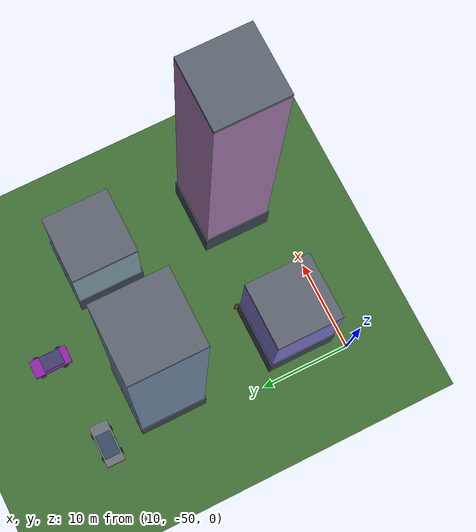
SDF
<sdf version="1.7">
 <world name="city_world">
  <model name="ground_plane">
   <static>true</static>
   <link name="link">
    <collision name="collision">
     <geometry><plane><normal>0 0 1</normal><size>300 300</size></plane></geometry>
     <surface><friction><ode><mu>100</mu><mu2>50</mu2></ode></friction></surface>
    </collision>
    <visual name="visual">
     <geometry><plane><normal>0 0 1</normal><size>300 300</size></plane></geometry>
     <material><ambient>0.24 0.42 0.20 1</ambient><diffuse>0.24 0.42 0.20 1</diffuse></material>
    </visual>
   </link>
  </model>
  <model name="car_10">
   <pose>22.5 -20.8 0.01 0 0 1.5708</pose>
   <static>true</static>
   <link name="link">
    <visual name="body">
     <pose>0 0 0.45 0 0 0</pose>
     <geometry><box><size>4.2 1.95 0.55</size></box></geometry>
     <material>
      <ambient>0.55 0.12 0.65 1</ambient>
      <diffuse>0.55 0.12 0.65 1</diffuse>
      <specular>0.5 0.5 0.5 1</specular>
     </material>
    </visual>
    <visual name="cabin">
     <pose>-0.2 0 0.95 0 0 0</pose>
     <geometry><box><size>2.3 1.65 0.65</size></box></geometry>
     <material>
      <ambient>0.22 0.30 0.40 0.85</ambient>
      <diffuse>0.22 0.30 0.40 0.85</diffuse>
      <specular>0.7 0.7 0.7 1</specular>
     </material>
    </visual>
    <visual name="hl_l">
     <pose>2.1 0.65 0.45 0 0 0</pose>
     <geometry><box><size>0.08 0.35 0.18</size></box></geometry>
     <material><ambient>1 1 0.8 1</ambient><diffuse>1 1 0.8 1</diffuse><emissive>1 1 0.8 1</emissive></material>
    </visual>
    <visual name="hl_r">
     <pose>2.1 -0.65 0.45 0 0 0</pose>
     <geometry><box><size>0.08 0.35 0.18</size></box></geometry>
     <material><ambient>1 1 0.8 1</ambient><diffuse>1 1 0.8 1</diffuse><emissive>1 1 0.8 1</emissive></material>
    </visual>
    <visual name="tl_l">
     <pose>-2.1 0.65 0.45 0 0 0</pose>
     <geometry><box><size>0.08 0.35 0.18</size></box></geometry>
     <material>
      <ambient>1 0.1 0.1 1</ambient>
      <diffuse>1 0.1 0.1 1</diffuse>
      <emissive>0.8 0 0 1</emissive>
     </material>
    </visual>
    <visual name="tl_r">
     <pose>-2.1 -0.65 0.45 0 0 0</pose>
     <geometry><box><size>0.08 0.35 0.18</size></box></geometry>
     <material>
      <ambient>1 0.1 0.1 1</ambient>
      <diffuse>1 0.1 0.1 1</diffuse>
      <emissive>0.8 0 0 1</emissive>
     </material>
    </visual>
    <visual name="w_fl">
     <pose>1.3 1.05 0.32 1.5708 0 0</pose>
     <geometry><cylinder><radius>0.32</radius><length>0.22</length></cylinder></geometry>
     <material><ambient>0.1 0.1 0.1 1</ambient><diffuse>0.1 0.1 0.1 1</diffuse></material>
    </visual>
    <visual name="w_fr">
     <pose>1.3 -1.05 0.32 1.5708 0 0</pose>
     <geometry><cylinder><radius>0.32</radius><length>0.22</length></cylinder></geometry>
     <material><ambient>0.1 0.1 0.1 1</ambient><diffuse>0.1 0.1 0.1 1</diffuse></material>
    </visual>
    <visual name="w_bl">
     <pose>-1.3 1.05 0.32 1.5708 0 0</pose>
     <geometry><cylinder><radius>0.32</radius><length>0.22</length></cylinder></geometry>
     <material><ambient>0.1 0.1 0.1 1</ambient><diffuse>0.1 0.1 0.1 1</diffuse></material>
    </visual>
    <visual name="w_br">
     <pose>-1.3 -1.05 0.32 1.5708 0 0</pose>
     <geometry><cylinder><radius>0.32</radius><length>0.22</length></cylinder></geometry>
     <material><ambient>0.1 0.1 0.1 1</ambient><diffuse>0.1 0.1 0.1 1</diffuse></material>
    </visual>
   </link>
  </model>
  <model name="car_15">
   <pose>12.0 -22.5 0.01 0 0 0.0000</pose>
   <static>true</static>
   <link name="link">
    <visual name="body">
     <pose>0 0 0.45 0 0 0</pose>
     <geometry><box><size>4.6 2.05 0.7</size></box></geometry>
     <material>
      <ambient>0.40 0.42 0.45 1</ambient>
      <diffuse>0.40 0.42 0.45 1</diffuse>
      <specular>0.5 0.5 0.5 1</specular>
     </material>
    </visual>
    <visual name="cabin">
     <pose>-0.2 0 0.95 0 0 0</pose>
     <geometry><box><size>2.6 1.65 0.75</size></box></geometry>
     <material>
      <ambient>0.22 0.30 0.40 0.85</ambient>
      <diffuse>0.22 0.30 0.40 0.85</diffuse>
      <specular>0.7 0.7 0.7 1</specular>
     </material>
    </visual>
    <visual name="hl_l">
     <pose>2.3 0.65 0.45 0 0 0</pose>
     <geometry><box><size>0.08 0.35 0.18</size></box></geometry>
     <material><ambient>1 1 0.8 1</ambient><diffuse>1 1 0.8 1</diffuse><emissive>1 1 0.8 1</emissive></material>
    </visual>
    <visual name="hl_r">
     <pose>2.3 -0.65 0.45 0 0 0</pose>
     <geometry><box><size>0.08 0.35 0.18</size></box></geometry>
     <material><ambient>1 1 0.8 1</ambient><diffuse>1 1 0.8 1</diffuse><emissive>1 1 0.8 1</emissive></material>
    </visual>
    <visual name="tl_l">
     <pose>-2.3 0.65 0.45 0 0 0</pose>
     <geometry><box><size>0.08 0.35 0.18</size></box></geometry>
     <material>
      <ambient>1 0.1 0.1 1</ambient>
      <diffuse>1 0.1 0.1 1</diffuse>
      <emissive>0.8 0 0 1</emissive>
     </material>
    </visual>
    <visual name="tl_r">
     <pose>-2.3 -0.65 0.45 0 0 0</pose>
     <geometry><box><size>0.08 0.35 0.18</size></box></geometry>
     <material>
      <ambient>1 0.1 0.1 1</ambient>
      <diffuse>1 0.1 0.1 1</diffuse>
      <emissive>0.8 0 0 1</emissive>
     </material>
    </visual>
    <visual name="w_fl">
     <pose>1.3 1.05 0.32 1.5708 0 0</pose>
     <geometry><cylinder><radius>0.32</radius><length>0.22</length></cylinder></geometry>
     <material><ambient>0.1 0.1 0.1 1</ambient><diffuse>0.1 0.1 0.1 1</diffuse></material>
    </visual>
    <visual name="w_fr">
     <pose>1.3 -1.05 0.32 1.5708 0 0</pose>
     <geometry><cylinder><radius>0.32</radius><length>0.22</length></cylinder></geometry>
     <material><ambient>0.1 0.1 0.1 1</ambient><diffuse>0.1 0.1 0.1 1</diffuse></material>
    </visual>
    <visual name="w_bl">
     <pose>-1.3 1.05 0.32 1.5708 0 0</pose>
     <geometry><cylinder><radius>0.32</radius><length>0.22</length></cylinder></geometry>
     <material><ambient>0.1 0.1 0.1 1</ambient><diffuse>0.1 0.1 0.1 1</diffuse></material>
    </visual>
    <visual name="w_br">
     <pose>-1.3 -1.05 0.32 1.5708 0 0</pose>
     <geometry><cylinder><radius>0.32</radius><length>0.22</length></cylinder></geometry>
     <material><ambient>0.1 0.1 0.1 1</ambient><diffuse>0.1 0.1 0.1 1</diffuse></material>
    </visual>
   </link>
  </model>
  <model name="pedestrian_15">
   <pose>19.0 -41.2 0.04 0 0 0.0000</pose>
   <static>true</static>
   <link name="link">
    <visual name="head">
     <pose>0 0 1.62 0 0 0</pose>
     <geometry><sphere><radius>0.13</radius></sphere></geometry>
     <material><ambient>0.50 0.32 0.16 1</ambient><diffuse>0.50 0.32 0.16 1</diffuse></material>
    </visual>
    <visual name="cap">
     <pose>0 -0.02 1.70 0 0 0</pose>
     <geometry><box><size>0.24 0.22 0.10</size></box></geometry>
     <material><ambient>0.2 0.15 0.1 1</ambient><diffuse>0.2 0.15 0.1 1</diffuse></material>
    </visual>
    <visual name="torso">
     <pose>0 0 1.20 0 0 0</pose>
     <geometry><box><size>0.34 0.24 0.52</size></box></geometry>
     <material><ambient>0.92 0.42 0.15 1</ambient><diffuse>0.92 0.42 0.15 1</diffuse></material>
    </visual>
    <visual name="arm_l">
     <pose>0 0.20 1.18 0 0 0</pose>
     <geometry><box><size>0.10 0.10 0.48</size></box></geometry>
     <material><ambient>0.92 0.42 0.15 1</ambient><diffuse>0.92 0.42 0.15 1</diffuse></material>
    </visual>
    <visual name="arm_r">
     <pose>0 -0.20 1.18 0 0 0</pose>
     <geometry><box><size>0.10 0.10 0.48</size></box></geometry>
     <material><ambient>0.92 0.42 0.15 1</ambient><diffuse>0.92 0.42 0.15 1</diffuse></material>
    </visual>
    <visual name="leg_l">
     <pose>0 0.09 0.60 0 0 0</pose>
     <geometry><box><size>0.13 0.13 0.62</size></box></geometry>
     <material><ambient>0.15 0.25 0.45 1</ambient><diffuse>0.15 0.25 0.45 1</diffuse></material>
    </visual>
    <visual name="leg_r">
     <pose>0 -0.09 0.60 0 0 0</pose>
     <geometry><box><size>0.13 0.13 0.62</size></box></geometry>
     <material><ambient>0.15 0.25 0.45 1</ambient><diffuse>0.15 0.25 0.45 1</diffuse></material>
    </visual>
    <visual name="shoe_l">
     <pose>0.04 0.09 0.05 0 0 0</pose>
     <geometry><box><size>0.22 0.13 0.08</size></box></geometry>
     <material><ambient>0.1 0.1 0.1 1</ambient><diffuse>0.1 0.1 0.1 1</diffuse></material>
    </visual>
    <visual name="shoe_r">
     <pose>0.04 -0.09 0.05 0 0 0</pose>
     <geometry><box><size>0.22 0.13 0.08</size></box></geometry>
     <material><ambient>0.1 0.1 0.1 1</ambient><diffuse>0.1 0.1 0.1 1</diffuse></material>
    </visual>
   </link>
  </model>
  <model name="building_20">
   <pose>15.0 -45.0 6.062860248329802 0 0 0</pose>
   <static>true</static>
   <link name="link">
    <collision name="collision"><geometry><box><size>7.20 7.20 12.13</size></box></geometry></collision>
    <visual name="tower">
     <geometry><box><size>7.20 7.20 12.13</size></box></geometry>
     <material>
      <ambient>0.50 0.48 0.83 1</ambient>
      <diffuse>0.50 0.48 0.83 1</diffuse>
      <specular>0.3 0.3 0.3 1</specular>
     </material>
    </visual>
    <visual name="lobby">
     <pose>0 0 -4.26 0 0 0</pose>
     <geometry><box><size>7.50 7.50 3.6</size></box></geometry>
     <material><ambient>0.25 0.28 0.32 1</ambient><diffuse>0.25 0.28 0.32 1</diffuse></material>
    </visual>
    <visual name="parapet">
     <pose>0 0 6.26 0 0 0</pose>
     <geometry><box><size>7.20 7.20 0.4</size></box></geometry>
     <material><ambient>0.35 0.38 0.42 1</ambient><diffuse>0.35 0.38 0.42 1</diffuse></material>
    </visual>
   </link>
  </model>
  <model name="building_21">
   <pose>15.0 -30.0 16.7692913643613 0 0 0</pose>
   <static>true</static>
   <link name="link">
    <collision name="collision"><geometry><box><size>7.20 7.14 33.54</size></box></geometry></collision>
    <visual name="tower">
     <geometry><box><size>7.20 7.14 33.54</size></box></geometry>
     <material>
      <ambient>0.47 0.56 0.68 1</ambient>
      <diffuse>0.47 0.56 0.68 1</diffuse>
      <specular>0.3 0.3 0.3 1</specular>
     </material>
    </visual>
    <visual name="lobby">
     <pose>0 0 -14.97 0 0 0</pose>
     <geometry><box><size>7.50 7.44 3.6</size></box></geometry>
     <material><ambient>0.25 0.28 0.32 1</ambient><diffuse>0.25 0.28 0.32 1</diffuse></material>
    </visual>
    <visual name="parapet">
     <pose>0 0 16.97 0 0 0</pose>
     <geometry><box><size>7.20 7.14 0.4</size></box></geometry>
     <material><ambient>0.35 0.38 0.42 1</ambient><diffuse>0.35 0.38 0.42 1</diffuse></material>
    </visual>
   </link>
  </model>
  <model name="building_24">
   <pose>30.0 -45.0 17.54041377619928 0 0 0</pose>
   <static>true</static>
   <link name="link">
    <collision name="collision"><geometry><box><size>7.20 7.20 35.08</size></box></geometry></collision>
    <visual name="tower">
     <geometry><box><size>7.20 7.20 35.08</size></box></geometry>
     <material>
      <ambient>0.66 0.49 0.70 1</ambient>
      <diffuse>0.66 0.49 0.70 1</diffuse>
      <specular>0.3 0.3 0.3 1</specular>
     </material>
    </visual>
    <visual name="lobby">
     <pose>0 0 -15.74 0 0 0</pose>
     <geometry><box><size>7.50 7.50 3.6</size></box></geometry>
     <material><ambient>0.25 0.28 0.32 1</ambient><diffuse>0.25 0.28 0.32 1</diffuse></material>
    </visual>
    <visual name="parapet">
     <pose>0 0 17.74 0 0 0</pose>
     <geometry><box><size>7.20 7.20 0.4</size></box></geometry>
     <material><ambient>0.35 0.38 0.42 1</ambient><diffuse>0.35 0.38 0.42 1</diffuse></material>
    </visual>
   </link>
  </model>
  <model name="building_25">
   <pose>30.0 -30.0 5.879530999582684 0 0 0</pose>
   <static>true</static>
   <link name="link">
    <collision name="collision"><geometry><box><size>7.20 7.20 11.76</size></box></geometry></collision>
    <visual name="tower">
     <geometry><box><size>7.20 7.20 11.76</size></box></geometry>
     <material>
      <ambient>0.52 0.65 0.69 1</ambient>
      <diffuse>0.52 0.65 0.69 1</diffuse>
      <specular>0.3 0.3 0.3 1</specular>
     </material>
    </visual>
    <visual name="lobby">
     <pose>0 0 -4.08 0 0 0</pose>
     <geometry><box><size>7.50 7.50 3.6</size></box></geometry>
     <material><ambient>0.25 0.28 0.32 1</ambient><diffuse>0.25 0.28 0.32 1</diffuse></material>
    </visual>
    <visual name="parapet">
     <pose>0 0 6.08 0 0 0</pose>
     <geometry><box><size>7.20 7.20 0.4</size></box></geometry>
     <material><ambient>0.35 0.38 0.42 1</ambient><diffuse>0.35 0.38 0.42 1</diffuse></material>
    </visual>
   </link>
  </model>
  <model name="helipad_7">
   <pose>30.0 -45.0 35.1808 0 0 0</pose>
   <static>true</static>
   <link name="link">
    <visual name="pad">
     <geometry><cylinder><radius>2.5</radius><length>0.15</length></cylinder></geometry>
     <material><ambient>1.0 0.82 0.0 1</ambient><diffuse>1.0 0.82 0.0 1</diffuse></material>
    </visual>
    <visual name="ring">
     <pose>0 0 0.02 0 0 0</pose>
     <geometry><cylinder><radius>2.3</radius><length>0.12</length></cylinder></geometry>
     <material><ambient>0.2 0.2 0.2 1</ambient><diffuse>0.2 0.2 0.2 1</diffuse></material>
    </visual>
    <visual name="inner_pad">
     <pose>0 0 0.04 0 0 0</pose>
     <geometry><cylinder><radius>2.0</radius><length>0.10</length></cylinder></geometry>
     <material><ambient>1.0 0.82 0.0 1</ambient><diffuse>1.0 0.82 0.0 1</diffuse></material>
    </visual>
    <visual name="h_bar1">
     <pose>-0.75 0 0.10 0 0 0</pose>
     <geometry><box><size>0.35 1.8 0.02</size></box></geometry>
     <material><ambient>1 1 1 1</ambient><diffuse>1 1 1 1</diffuse></material>
    </visual>
    <visual name="h_bar2">
     <pose>0.75 0 0.10 0 0 0</pose>
     <geometry><box><size>0.35 1.8 0.02</size></box></geometry>
     <material><ambient>1 1 1 1</ambient><diffuse>1 1 1 1</diffuse></material>
    </visual>
    <visual name="h_cross">
     <pose>0 0 0.10 0 0 0</pose>
     <geometry><box><size>1.5 0.35 0.02</size></box></geometry>
     <material><ambient>1 1 1 1</ambient><diffuse>1 1 1 1</diffuse></material>
    </visual>
   </link>
  </model>
 </world>
</sdf>
